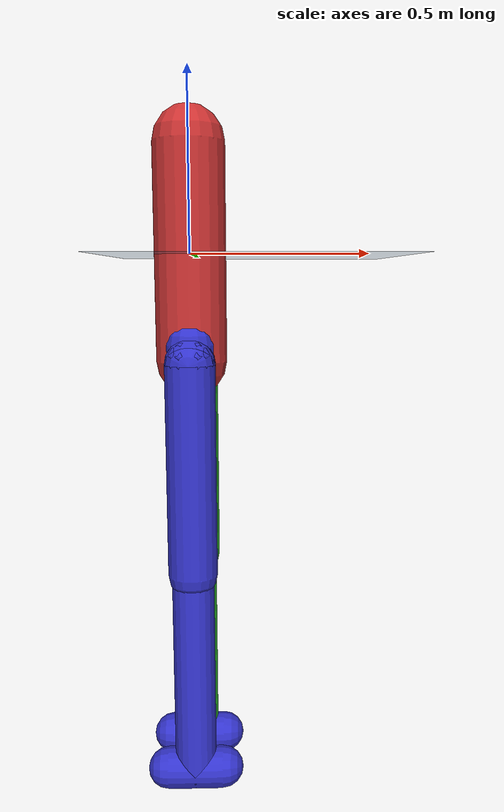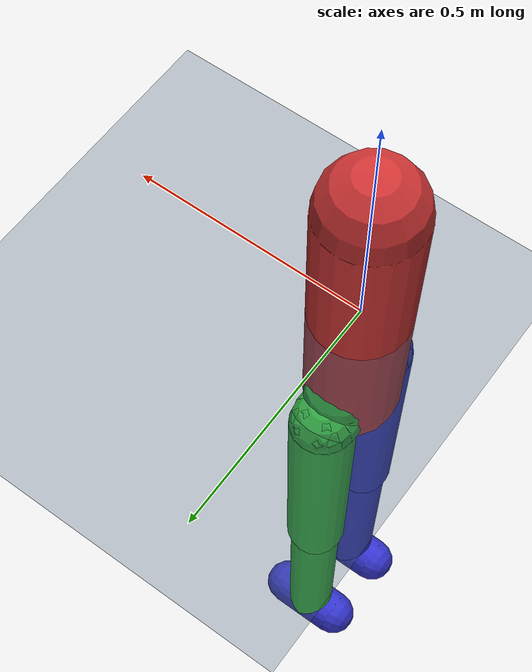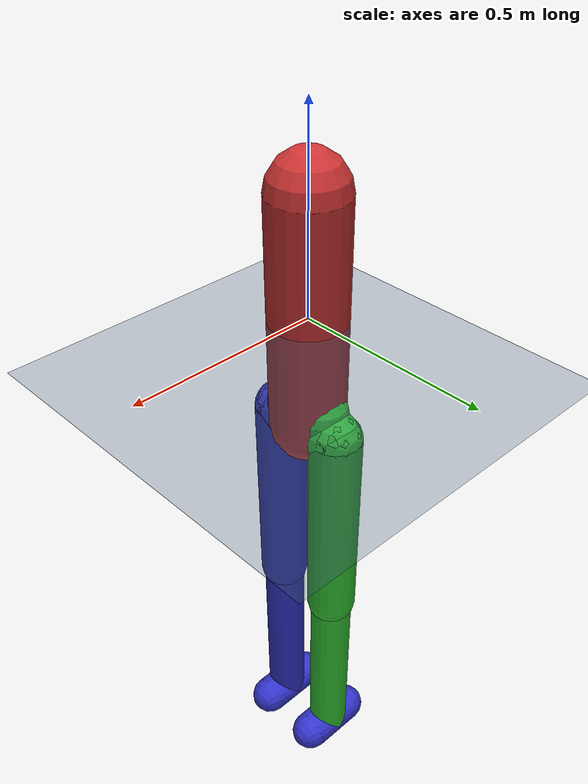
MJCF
<mujoco model="simple_biped">
    <compiler angle="degree"/>

    <option timestep="0.0005"/>

    <visual>
        <headlight diffuse="0.6 0.6 0.6" ambient="0.3 0.3 0.3" specular="0.1 0.1 0.1"/>
        <rgba haze="0.15 0.25 0.35 1"/>
        <global azimuth="120" elevation="30" offwidth="800" offheight="600"/>
    </visual>

    <worldbody>
        <light name="sun" directional="true" dir="-1 -1 -2" castshadow="true"/>
        <camera name="track" pos="3 -3 1" xyaxes="1 1 0 0 0 1" mode="trackcom"/>

        <!-- Ground plane -->
        <geom name="ground" type="plane" size="50 50 0.1" rgba="0.2 0.3 0.4 1"/>

        <!-- Heightfield terrain -->

        <!-- Torso -->
        <body name="torso" pos="0 0 0">
            <geom type="capsule" size="0.1 0.3" mass="8" rgba="0.8 0.2 0.2 1"/>
            <joint type="free"/>
            <site name="torso_site" pos="0 0 0" size="0.02" rgba="1 0 0 0.8" euler="0 0 180"/>

            <!-- Right leg -->
            <body name="right_hip_z" pos="0 -0.05 -0.25">
                <joint name="right_hip_z_j" type="hinge" axis="0 0 1" range="-20 20"/>
                <geom type="capsule" size="0.07 0.025" mass="0.1" rgba="0.2 0.2 0.8 1" pos="0 0.0 -0.025"  euler="-0 0 0" contype="0" conaffinity="0"/>
                <body name="right_hip_y" pos="0 -0.00 -0.05">
                    <joint name="right_hip_y_j" type="hinge" axis="1 0 0" range="-20 20"/>
                    <geom type="capsule" size="0.07 0.025" mass="0.1" rgba="0.2 0.2 0.8 1" pos="0 -0.025 0.0"  euler="90 0 0" contype="0" conaffinity="0"/>
                    <body name="right_thigh" pos="0 -0.05 -0.0">
                        <joint name="right_hip" type="hinge" axis="0 1 0" range="-60 60"/>
                        <geom type="capsule" size="0.07 0.3" mass="1" rgba="0.2 0.2 0.8 1" pos="0 0 -0.3" contype="0" conaffinity="0"/>
                        <!-- Right shin -->
                        <body name="right_shin" pos="0 0 -0.6">
                            <joint name="right_knee" type="hinge" axis="0 1 0" range="-120 -5"/>
                            <geom name="right_shin_geom" type="capsule" size="0.06 0.3" mass="1" rgba="0.2 0.2 0.8 1" pos="0 0 -0.3"/>
                            <body name="right_foot" pos="0 0 -0.6">
                                <joint name="right_foot_j" type="hinge" axis="0 1 0" range="-60 60"/>
                                <geom name="right_foot_geom" type="capsule" size="0.06 0.08" mass="0.1" rgba="0.2 0.2 0.8 1" pos="0 0 -0.0" euler="-0 90 0"
                                solref="0.001 1" solimp="0.99 0.99 0.001"/>
                            </body>
                        </body>
                    </body>
                </body>
            </body>
            <!-- Left leg -->
            <body name="left_hip_z" pos="0 0.05 -0.25">
                <joint name="left_hip_z_j" type="hinge" axis="0 0 1" range="-20 20"/>
                <geom type="capsule" size="0.07 0.025" mass="0.1" rgba="0.2 0.8 0.2 1" pos="0 0.0 -0.025"  euler="-0 0 0" contype="0" conaffinity="0"/>
                <body name="left_hip_y" pos="0 0.0 -0.05">
                    <joint name="left_hip_y_j" type="hinge" axis="1 0 0" range="-20 20"/>
                    <geom type="capsule" size="0.07 0.025" mass="0.1" rgba="0.2 0.8 0.2 1" pos="0 0.025 0.0"  euler="90 0 0" contype="0" conaffinity="0"/>
                    <!-- Left thigh -->
                    <body name="left_thigh" pos="0 0.05 -0.0">
                        <joint name="left_hip" type="hinge" axis="0 1 0" range="-120 120"/>
                        <geom type="capsule" size="0.07 0.3" mass="1" rgba="0.2 0.8 0.2 1" pos="0 0 -0.3" contype="0" conaffinity="0"/>
                        <!-- Left shin -->
                        <body name="left_shin" pos="0 0 -0.6">
                            <joint name="left_knee" type="hinge" axis="0 1 0" range="-120 -5"/>
                            <geom name="left_shin_geom" type="capsule" size="0.06 0.3" mass="1" rgba="0.2 0.8 0.2 1" pos="0 0 -0.3"/>
                            <body name="left_foot" pos="0 0 -0.6">
                                <joint name="left_foot_j" type="hinge" axis="0 1 0" range="-60 60"/>
                                <geom name="left_foot_geom" type="capsule" size="0.06 0.08" mass="0.1" rgba="0.2 0.2 0.8 1" pos="0 0 -0.0" euler="-0 90 0"
                                solref="0.001 1" solimp="0.99 0.99 0.001"/>
                            </body>
                        </body>
                    </body>
                </body>
            </body>
        </body>
    </worldbody>

    <keyframe>
        <key name="stand" qpos="0 0 1.55 1 0 0 0 0 0 0 0 0 0 0 0 0 0"/>
    </keyframe>

    <actuator>
        <motor joint="right_hip_z_j"/>
        <motor joint="right_hip_y_j"/>
        <motor joint="right_hip"/>
        <motor joint="right_knee"/>
        <motor joint="right_foot_j" />

        <motor joint="left_hip_z_j"/>
        <motor joint="left_hip_y_j"/>
        <motor joint="left_hip"/>
        <motor joint="left_knee"/>
        <motor joint="left_foot_j" />
    </actuator>

    <sensor>
        <gyro name="body_gyro" site="torso_site"/>
    </sensor>

</mujoco>
